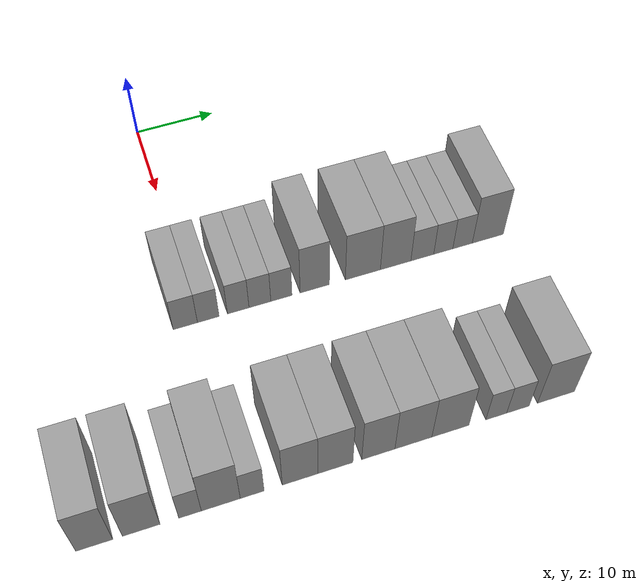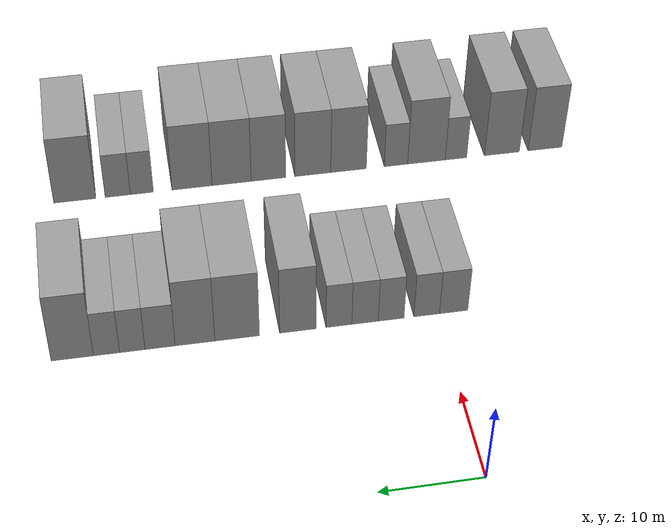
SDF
<sdf version="1.6">
 <world name="default">
  <model name="building_50">
   <static>1</static>
   <pose>25.0000 -1.6596 0 0.000000 0.000000 0.000000</pose>
   <link name="link">
    <pose>0 0 3.00 0 0 0</pose>
    <collision name="collision"><geometry><box><size>10.0000 2.8880 6.0000</size></box></geometry></collision>
    <visual name="visual">
     <cast_shadows>0</cast_shadows>
     <geometry><box><size>10.0000 2.8880 6.0000</size></box></geometry>
     <material>
      <script>
       <uri>model://grey_wall/materials/scripts</uri>
       <uri>model://grey_wall/materials/textures</uri>
       <name>vrc/grey_wall</name>
      </script>
     </material>
    </visual>
   </link>
  </model>
  <model name="building_51">
   <static>1</static>
   <pose>25.0000 1.0819 0 0.000000 0.000000 0.000000</pose>
   <link name="link">
    <pose>0 0 3.00 0 0 0</pose>
    <collision name="collision"><geometry><box><size>10.0000 2.5949 6.0000</size></box></geometry></collision>
    <visual name="visual">
     <cast_shadows>0</cast_shadows>
     <geometry><box><size>10.0000 2.5949 6.0000</size></box></geometry>
     <material>
      <script>
       <uri>model://grey_wall/materials/scripts</uri>
       <uri>model://grey_wall/materials/textures</uri>
       <name>vrc/grey_wall</name>
      </script>
     </material>
    </visual>
   </link>
  </model>
  <model name="building_52">
   <static>1</static>
   <pose>25.0000 4.6822 0 0.000000 0.000000 0.000000</pose>
   <link name="link">
    <pose>0 0 3.00 0 0 0</pose>
    <collision name="collision"><geometry><box><size>10.0000 2.6058 6.0000</size></box></geometry></collision>
    <visual name="visual">
     <cast_shadows>0</cast_shadows>
     <geometry><box><size>10.0000 2.6058 6.0000</size></box></geometry>
     <material>
      <script>
       <uri>model://grey_wall/materials/scripts</uri>
       <uri>model://grey_wall/materials/textures</uri>
       <name>vrc/grey_wall</name>
      </script>
     </material>
    </visual>
   </link>
  </model>
  <model name="building_53">
   <static>1</static>
   <pose>25.0000 7.3103 0 0.000000 0.000000 0.000000</pose>
   <link name="link">
    <pose>0 0 3.00 0 0 0</pose>
    <collision name="collision"><geometry><box><size>10.0000 2.6505 6.0000</size></box></geometry></collision>
    <visual name="visual">
     <cast_shadows>0</cast_shadows>
     <geometry><box><size>10.0000 2.6505 6.0000</size></box></geometry>
     <material>
      <script>
       <uri>model://grey_wall/materials/scripts</uri>
       <uri>model://grey_wall/materials/textures</uri>
       <name>vrc/grey_wall</name>
      </script>
     </material>
    </visual>
   </link>
  </model>
  <model name="building_54">
   <static>1</static>
   <pose>25.0000 9.9324 0 0.000000 0.000000 0.000000</pose>
   <link name="link">
    <pose>0 0 3.00 0 0 0</pose>
    <collision name="collision"><geometry><box><size>10.0000 2.5936 6.0000</size></box></geometry></collision>
    <visual name="visual">
     <cast_shadows>0</cast_shadows>
     <geometry><box><size>10.0000 2.5936 6.0000</size></box></geometry>
     <material>
      <script>
       <uri>model://grey_wall/materials/scripts</uri>
       <uri>model://grey_wall/materials/textures</uri>
       <name>vrc/grey_wall</name>
      </script>
     </material>
    </visual>
   </link>
  </model>
  <model name="building_55">
   <static>1</static>
   <pose>25.0000 14.0407 0 0.000000 0.000000 0.000000</pose>
   <link name="link">
    <pose>0 0 4.50 0 0 0</pose>
    <collision name="collision"><geometry><box><size>10.0000 3.6229 9.0000</size></box></geometry></collision>
    <visual name="visual">
     <cast_shadows>0</cast_shadows>
     <geometry><box><size>10.0000 3.6229 9.0000</size></box></geometry>
     <material>
      <script>
       <uri>model://grey_wall/materials/scripts</uri>
       <uri>model://grey_wall/materials/textures</uri>
       <name>vrc/grey_wall</name>
      </script>
     </material>
    </visual>
   </link>
  </model>
  <model name="building_56">
   <static>1</static>
   <pose>25.0000 20.0554 0 0.000000 0.000000 0.000000</pose>
   <link name="link">
    <pose>0 0 4.50 0 0 0</pose>
    <collision name="collision"><geometry><box><size>10.0000 4.4065 9.0000</size></box></geometry></collision>
    <visual name="visual">
     <cast_shadows>0</cast_shadows>
     <geometry><box><size>10.0000 4.4065 9.0000</size></box></geometry>
     <material>
      <script>
       <uri>model://grey_wall/materials/scripts</uri>
       <uri>model://grey_wall/materials/textures</uri>
       <name>vrc/grey_wall</name>
      </script>
     </material>
    </visual>
   </link>
  </model>
  <model name="building_57">
   <static>1</static>
   <pose>25.0000 24.2026 0 0.000000 0.000000 0.000000</pose>
   <link name="link">
    <pose>0 0 4.50 0 0 0</pose>
    <collision name="collision"><geometry><box><size>10.0000 3.8880 9.0000</size></box></geometry></collision>
    <visual name="visual">
     <cast_shadows>0</cast_shadows>
     <geometry><box><size>10.0000 3.8880 9.0000</size></box></geometry>
     <material>
      <script>
       <uri>model://grey_wall/materials/scripts</uri>
       <uri>model://grey_wall/materials/textures</uri>
       <name>vrc/grey_wall</name>
      </script>
     </material>
    </visual>
   </link>
  </model>
  <model name="building_58">
   <static>1</static>
   <pose>25.0000 27.6163 0 0.000000 0.000000 0.000000</pose>
   <link name="link">
    <pose>0 0 3.00 0 0 0</pose>
    <collision name="collision"><geometry><box><size>10.0000 2.9393 6.0000</size></box></geometry></collision>
    <visual name="visual">
     <cast_shadows>0</cast_shadows>
     <geometry><box><size>10.0000 2.9393 6.0000</size></box></geometry>
     <material>
      <script>
       <uri>model://grey_wall/materials/scripts</uri>
       <uri>model://grey_wall/materials/textures</uri>
       <name>vrc/grey_wall</name>
      </script>
     </material>
    </visual>
   </link>
  </model>
  <model name="building_59">
   <static>1</static>
   <pose>25.0000 30.3208 0 0.000000 0.000000 0.000000</pose>
   <link name="link">
    <pose>0 0 3.00 0 0 0</pose>
    <collision name="collision"><geometry><box><size>10.0000 2.4696 6.0000</size></box></geometry></collision>
    <visual name="visual">
     <cast_shadows>0</cast_shadows>
     <geometry><box><size>10.0000 2.4696 6.0000</size></box></geometry>
     <material>
      <script>
       <uri>model://grey_wall/materials/scripts</uri>
       <uri>model://grey_wall/materials/textures</uri>
       <name>vrc/grey_wall</name>
      </script>
     </material>
    </visual>
   </link>
  </model>
  <model name="building_60">
   <static>1</static>
   <pose>25.0000 32.8237 0 0.000000 0.000000 0.000000</pose>
   <link name="link">
    <pose>0 0 3.00 0 0 0</pose>
    <collision name="collision"><geometry><box><size>10.0000 2.5363 6.0000</size></box></geometry></collision>
    <visual name="visual">
     <cast_shadows>0</cast_shadows>
     <geometry><box><size>10.0000 2.5363 6.0000</size></box></geometry>
     <material>
      <script>
       <uri>model://grey_wall/materials/scripts</uri>
       <uri>model://grey_wall/materials/textures</uri>
       <name>vrc/grey_wall</name>
      </script>
     </material>
    </visual>
   </link>
  </model>
  <model name="building_61">
   <static>1</static>
   <pose>25.0000 36.1322 0 0.000000 0.000000 0.000000</pose>
   <link name="link">
    <pose>0 0 4.50 0 0 0</pose>
    <collision name="collision"><geometry><box><size>10.0000 4.0808 9.0000</size></box></geometry></collision>
    <visual name="visual">
     <cast_shadows>0</cast_shadows>
     <geometry><box><size>10.0000 4.0808 9.0000</size></box></geometry>
     <material>
      <script>
       <uri>model://grey_wall/materials/scripts</uri>
       <uri>model://grey_wall/materials/textures</uri>
       <name>vrc/grey_wall</name>
      </script>
     </material>
    </visual>
   </link>
  </model>
  <model name="building_152">
   <static>1</static>
   <pose>47.0000 -17.1603 0 0.000000 0.000000 0.000000</pose>
   <link name="link">
    <pose>0 0 4.50 0 0 0</pose>
    <collision name="collision"><geometry><box><size>10.0000 3.8521 9.0000</size></box></geometry></collision>
    <visual name="visual">
     <cast_shadows>0</cast_shadows>
     <geometry><box><size>10.0000 3.8521 9.0000</size></box></geometry>
     <material>
      <script>
       <uri>model://grey_wall/materials/scripts</uri>
       <uri>model://grey_wall/materials/textures</uri>
       <name>vrc/grey_wall</name>
      </script>
     </material>
    </visual>
   </link>
  </model>
  <model name="building_153">
   <static>1</static>
   <pose>47.0000 -12.2465 0 0.000000 0.000000 0.000000</pose>
   <link name="link">
    <pose>0 0 4.50 0 0 0</pose>
    <collision name="collision"><geometry><box><size>10.0000 3.9756 9.0000</size></box></geometry></collision>
    <visual name="visual">
     <cast_shadows>0</cast_shadows>
     <geometry><box><size>10.0000 3.9756 9.0000</size></box></geometry>
     <material>
      <script>
       <uri>model://grey_wall/materials/scripts</uri>
       <uri>model://grey_wall/materials/textures</uri>
       <name>vrc/grey_wall</name>
      </script>
     </material>
    </visual>
   </link>
  </model>
  <model name="building_154">
   <static>1</static>
   <pose>47.0000 -7.0465 0 0.000000 0.000000 0.000000</pose>
   <link name="link">
    <pose>0 0 3.00 0 0 0</pose>
    <collision name="collision"><geometry><box><size>10.0000 2.4245 6.0000</size></box></geometry></collision>
    <visual name="visual">
     <cast_shadows>0</cast_shadows>
     <geometry><box><size>10.0000 2.4245 6.0000</size></box></geometry>
     <material>
      <script>
       <uri>model://grey_wall/materials/scripts</uri>
       <uri>model://grey_wall/materials/textures</uri>
       <name>vrc/grey_wall</name>
      </script>
     </material>
    </visual>
   </link>
  </model>
  <model name="building_155">
   <static>1</static>
   <pose>47.0000 -3.7290 0 0.000000 0.000000 0.000000</pose>
   <link name="link">
    <pose>0 0 4.50 0 0 0</pose>
    <collision name="collision"><geometry><box><size>10.0000 4.2106 9.0000</size></box></geometry></collision>
    <visual name="visual">
     <cast_shadows>0</cast_shadows>
     <geometry><box><size>10.0000 4.2106 9.0000</size></box></geometry>
     <material>
      <script>
       <uri>model://grey_wall/materials/scripts</uri>
       <uri>model://grey_wall/materials/textures</uri>
       <name>vrc/grey_wall</name>
      </script>
     </material>
    </visual>
   </link>
  </model>
  <model name="building_156">
   <static>1</static>
   <pose>47.0000 -0.3167 0 0.000000 0.000000 0.000000</pose>
   <link name="link">
    <pose>0 0 3.00 0 0 0</pose>
    <collision name="collision"><geometry><box><size>10.0000 2.6139 6.0000</size></box></geometry></collision>
    <visual name="visual">
     <cast_shadows>0</cast_shadows>
     <geometry><box><size>10.0000 2.6139 6.0000</size></box></geometry>
     <material>
      <script>
       <uri>model://grey_wall/materials/scripts</uri>
       <uri>model://grey_wall/materials/textures</uri>
       <name>vrc/grey_wall</name>
      </script>
     </material>
    </visual>
   </link>
  </model>
  <model name="building_157">
   <static>1</static>
   <pose>47.0000 4.9644 0 0.000000 0.000000 0.000000</pose>
   <link name="link">
    <pose>0 0 4.50 0 0 0</pose>
    <collision name="collision"><geometry><box><size>10.0000 3.9484 9.0000</size></box></geometry></collision>
    <visual name="visual">
     <cast_shadows>0</cast_shadows>
     <geometry><box><size>10.0000 3.9484 9.0000</size></box></geometry>
     <material>
      <script>
       <uri>model://grey_wall/materials/scripts</uri>
       <uri>model://grey_wall/materials/textures</uri>
       <name>vrc/grey_wall</name>
      </script>
     </material>
    </visual>
   </link>
  </model>
  <model name="building_158">
   <static>1</static>
   <pose>47.0000 8.9166 0 0.000000 0.000000 0.000000</pose>
   <link name="link">
    <pose>0 0 4.50 0 0 0</pose>
    <collision name="collision"><geometry><box><size>10.0000 3.9561 9.0000</size></box></geometry></collision>
    <visual name="visual">
     <cast_shadows>0</cast_shadows>
     <geometry><box><size>10.0000 3.9561 9.0000</size></box></geometry>
     <material>
      <script>
       <uri>model://grey_wall/materials/scripts</uri>
       <uri>model://grey_wall/materials/textures</uri>
       <name>vrc/grey_wall</name>
      </script>
     </material>
    </visual>
   </link>
  </model>
  <model name="building_159">
   <static>1</static>
   <pose>47.0000 13.7910 0 0.000000 0.000000 0.000000</pose>
   <link name="link">
    <pose>0 0 4.50 0 0 0</pose>
    <collision name="collision"><geometry><box><size>10.0000 3.7926 9.0000</size></box></geometry></collision>
    <visual name="visual">
     <cast_shadows>0</cast_shadows>
     <geometry><box><size>10.0000 3.7926 9.0000</size></box></geometry>
     <material>
      <script>
       <uri>model://grey_wall/materials/scripts</uri>
       <uri>model://grey_wall/materials/textures</uri>
       <name>vrc/grey_wall</name>
      </script>
     </material>
    </visual>
   </link>
  </model>
  <model name="building_160">
   <static>1</static>
   <pose>47.0000 17.8214 0 0.000000 0.000000 0.000000</pose>
   <link name="link">
    <pose>0 0 4.50 0 0 0</pose>
    <collision name="collision"><geometry><box><size>10.0000 4.2682 9.0000</size></box></geometry></collision>
    <visual name="visual">
     <cast_shadows>0</cast_shadows>
     <geometry><box><size>10.0000 4.2682 9.0000</size></box></geometry>
     <material>
      <script>
       <uri>model://grey_wall/materials/scripts</uri>
       <uri>model://grey_wall/materials/textures</uri>
       <name>vrc/grey_wall</name>
      </script>
     </material>
    </visual>
   </link>
  </model>
  <model name="building_161">
   <static>1</static>
   <pose>47.0000 22.1279 0 0.000000 0.000000 0.000000</pose>
   <link name="link">
    <pose>0 0 4.50 0 0 0</pose>
    <collision name="collision"><geometry><box><size>10.0000 4.3446 9.0000</size></box></geometry></collision>
    <visual name="visual">
     <cast_shadows>0</cast_shadows>
     <geometry><box><size>10.0000 4.3446 9.0000</size></box></geometry>
     <material>
      <script>
       <uri>model://grey_wall/materials/scripts</uri>
       <uri>model://grey_wall/materials/textures</uri>
       <name>vrc/grey_wall</name>
      </script>
     </material>
    </visual>
   </link>
  </model>
  <model name="building_162">
   <static>1</static>
   <pose>47.0000 27.5380 0 0.000000 0.000000 0.000000</pose>
   <link name="link">
    <pose>0 0 3.00 0 0 0</pose>
    <collision name="collision"><geometry><box><size>10.0000 2.4757 6.0000</size></box></geometry></collision>
    <visual name="visual">
     <cast_shadows>0</cast_shadows>
     <geometry><box><size>10.0000 2.4757 6.0000</size></box></geometry>
     <material>
      <script>
       <uri>model://grey_wall/materials/scripts</uri>
       <uri>model://grey_wall/materials/textures</uri>
       <name>vrc/grey_wall</name>
      </script>
     </material>
    </visual>
   </link>
  </model>
  <model name="building_163">
   <static>1</static>
   <pose>47.0000 30.1264 0 0.000000 0.000000 0.000000</pose>
   <link name="link">
    <pose>0 0 3.00 0 0 0</pose>
    <collision name="collision"><geometry><box><size>10.0000 2.7009 6.0000</size></box></geometry></collision>
    <visual name="visual">
     <cast_shadows>0</cast_shadows>
     <geometry><box><size>10.0000 2.7009 6.0000</size></box></geometry>
     <material>
      <script>
       <uri>model://grey_wall/materials/scripts</uri>
       <uri>model://grey_wall/materials/textures</uri>
       <name>vrc/grey_wall</name>
      </script>
     </material>
    </visual>
   </link>
  </model>
  <model name="building_164">
   <static>1</static>
   <pose>47.0000 34.7181 0 0.000000 0.000000 0.000000</pose>
   <link name="link">
    <pose>0 0 4.50 0 0 0</pose>
    <collision name="collision"><geometry><box><size>10.0000 4.4826 9.0000</size></box></geometry></collision>
    <visual name="visual">
     <cast_shadows>0</cast_shadows>
     <geometry><box><size>10.0000 4.4826 9.0000</size></box></geometry>
     <material>
      <script>
       <uri>model://grey_wall/materials/scripts</uri>
       <uri>model://grey_wall/materials/textures</uri>
       <name>vrc/grey_wall</name>
      </script>
     </material>
    </visual>
   </link>
  </model>
 </world>
</sdf>
